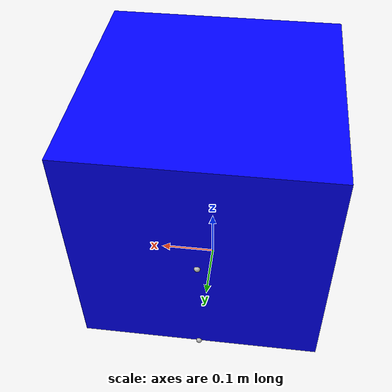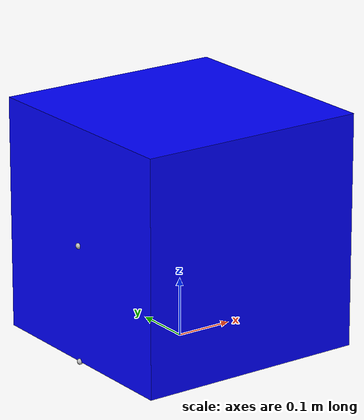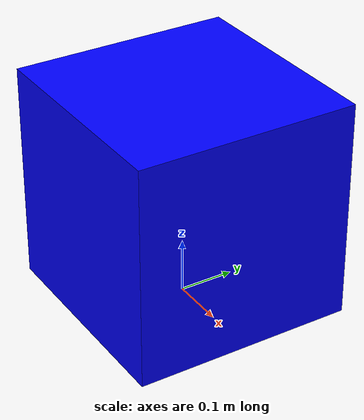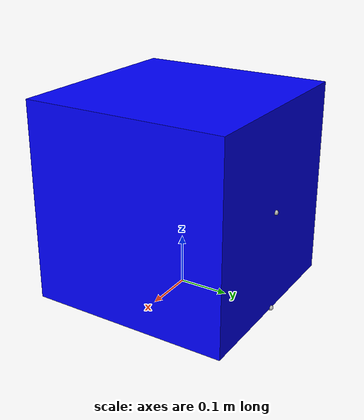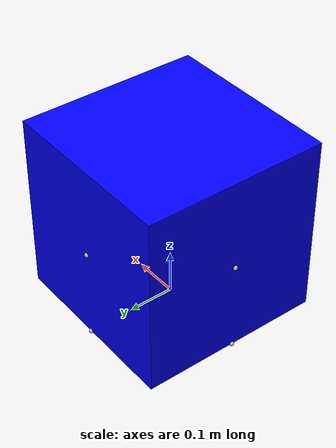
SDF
<?xml version="1.0" ?>
<sdf version="1.8">
<model name="load_large">
  <link name="box_body">
    <pose>0 0 0.2 0 0 0</pose>
      <inertial> <!--inertial properties of the link mass, inertia matix-->
        <mass>0.015</mass>
        <inertia>
          <ixx>0.000399</ixx>
          <ixy>0</ixy>
          <ixz>0</ixz>
          <iyy>0.000399</iyy>
          <iyz>0</iyz>
          <izz>0.000399</izz>
        </inertia>
      </inertial>
      <visual name='visual'>
        <geometry>
          <box>
            <size>0.4 0.4 0.4</size>
          </box>
        </geometry>
          <!--let's add color to our link-->
          <material>
            <ambient>0.0 0.0 1.0 1</ambient>
            <diffuse>0.0 0.0 1.0 1</diffuse>
            <specular>0.0 0.0 1.0 1</specular>
          </material>
      </visual>
      <collision name='collision'>
        <geometry>
          <box>
            <size>0.4 0.4 0.4</size>
          </box>
        </geometry>
        <surface>
          <friction>
            <ode>
              <mu> 0.3 </mu>
            </ode>
          </friction>
        </surface>
      </collision>
    </link>
  <link name="x_hook">
    <pose>-0.2 0 0 0 0 0</pose>
    <inertial>
      <mass>0.00001</mass>
        <inertia>
          <ixx>1e-9</ixx>
          <ixy>0</ixy>
          <ixz>0</ixz>
          <iyy>1e-9</iyy>
          <iyz>0</iyz>
          <izz>1e-9</izz>
        </inertia>
    </inertial>
    <visual name="hook_visual"><geometry><sphere><radius>0.005</radius></sphere></geometry></visual>
    <collision name="hook_collision"><geometry><sphere><radius>0.005</radius></sphere></geometry></collision>
  </link>
  <joint name="box_to_hook_x_joint" type="fixed">
    <parent>box_body</parent>
    <child>x_hook</child>
  </joint>

  <link name="x_middle_hook">
    <pose>-0.2 0 0.2 0 0 0</pose>
    <inertial>
      <mass>0.00001</mass>
        <inertia>
          <ixx>1e-9</ixx>
          <ixy>0</ixy>
          <ixz>0</ixz>
          <iyy>1e-9</iyy>
          <iyz>0</iyz>
          <izz>1e-9</izz>
        </inertia>
    </inertial>
    <visual name="hook_visual"><geometry><sphere><radius>0.005</radius></sphere></geometry></visual>
    <collision name="hook_collision"><geometry><sphere><radius>0.005</radius></sphere></geometry></collision>
  </link>
  <joint name="box_to_middle_hook_x_joint" type="fixed">
    <parent>box_body</parent>
    <child>x_middle_hook</child>
  </joint>

  <link name="x_middle_detacheable_hook">
    <pose>-0.2 0 0.2 0 0 0</pose>
    <inertial>
      <mass>0.00001</mass>
        <inertia>
          <ixx>1e-9</ixx>
          <ixy>0</ixy>
          <ixz>0</ixz>
          <iyy>1e-9</iyy>
          <iyz>0</iyz>
          <izz>1e-9</izz>
        </inertia>
    </inertial>
    <visual name="hook_visual"><geometry><sphere><radius>0.005</radius></sphere></geometry></visual>
    <collision name="hook_collision"><geometry><sphere><radius>0.005</radius></sphere></geometry></collision>
  </link>
  <plugin filename="gz-sim-detachable-joint-system" name="gz::sim::systems::DetachableJoint">
       <parent_link>box_body</parent_link>
       <child_model>__model__</child_model>
       <joint_name>detached_joint </joint_name>
       <child_link>x_middle_detacheable_hook</child_link>
       <detach_topic>/load/detach</detach_topic>
  </plugin>

  <link name="y_hook">
    <pose>0 0.2 0 0 0 0</pose>
    <inertial>
      <mass>0.00001</mass>
        <inertia>
          <ixx>1e-9</ixx>
          <ixy>0</ixy>
          <ixz>0</ixz>
          <iyy>1e-9</iyy>
          <iyz>0</iyz>
          <izz>1e-9</izz>
        </inertia>
    </inertial>
    <visual name="hook_visual"><geometry><sphere><radius>0.005</radius></sphere></geometry></visual>
    <collision name="hook_collision"><geometry><sphere><radius>0.005</radius></sphere></geometry></collision>
  </link>
  <joint name="box_to_hook_y_joint" type="fixed">
    <parent>box_body</parent>
    <child>y_hook</child>
  </joint>

  <link name="y_middle_hook">
    <pose>0 0.2 0.2 0 0 0</pose>
    <inertial>
      <mass>0.00001</mass>
        <inertia>
          <ixx>1e-9</ixx>
          <ixy>0</ixy>
          <ixz>0</ixz>
          <iyy>1e-9</iyy>
          <iyz>0</iyz>
          <izz>1e-9</izz>
        </inertia>
    </inertial>
    <visual name="hook_visual"><geometry><sphere><radius>0.005</radius></sphere></geometry></visual>
    <collision name="hook_collision"><geometry><sphere><radius>0.005</radius></sphere></geometry></collision>
  </link>
  <joint name="box_to_middle_hook_y_joint" type="fixed">
    <parent>box_body</parent>
    <child>y_middle_hook</child>
  </joint>

  <plugin
      filename="gz-sim-odometry-publisher-system"
      name="gz::sim::systems::OdometryPublisher">
      <odom_frame>odom</odom_frame>
      <dimensions>3</dimensions>
    </plugin>
</model>
</sdf>
